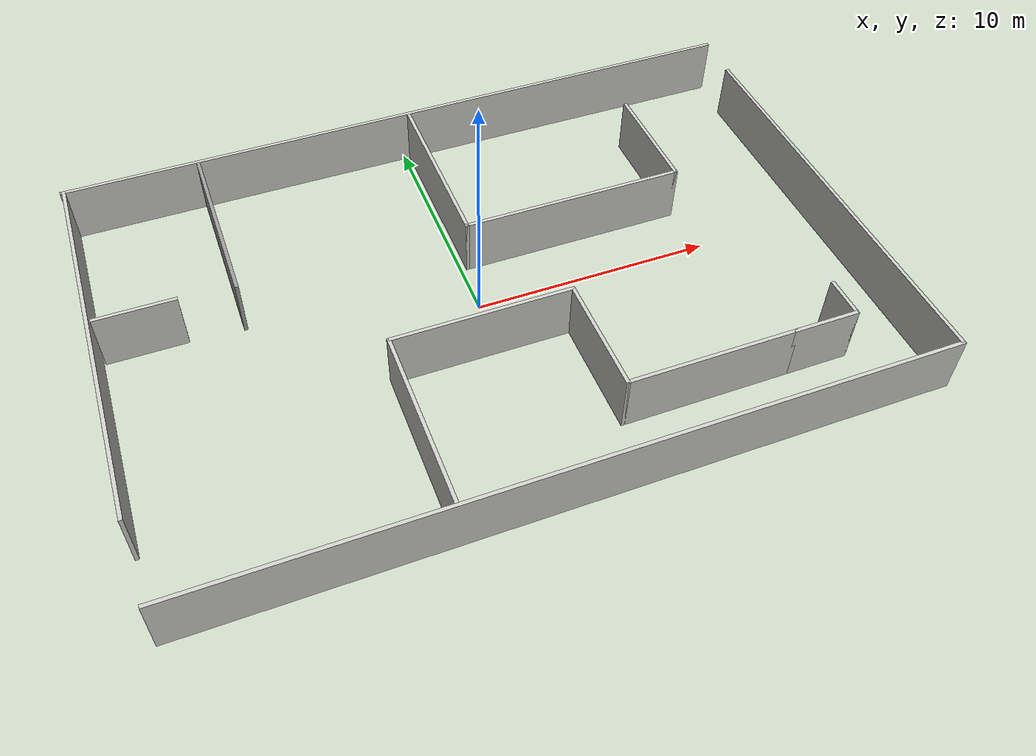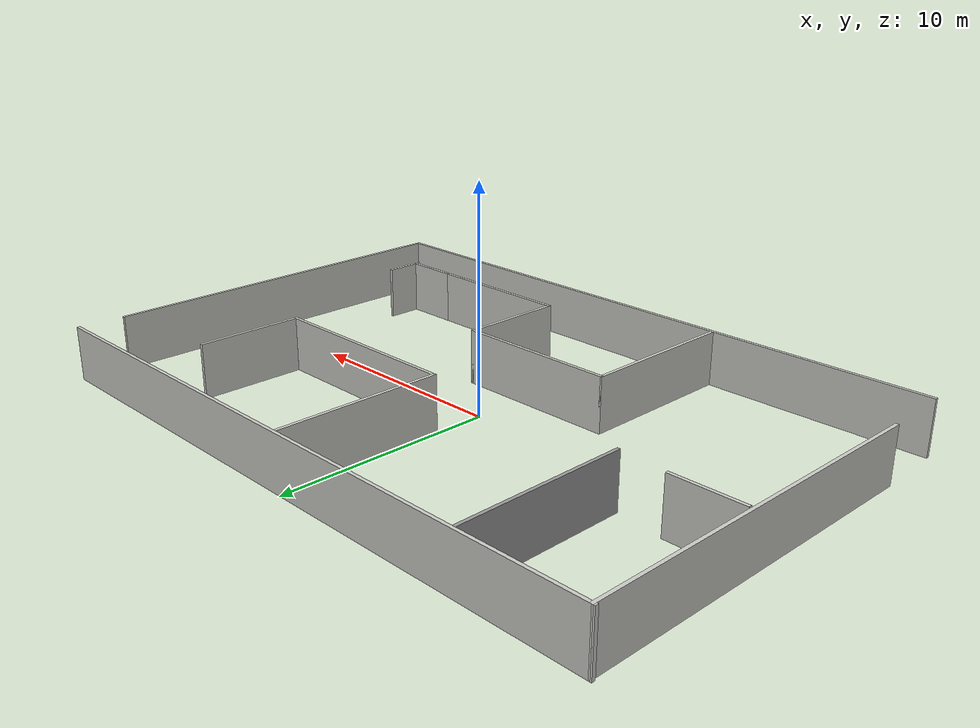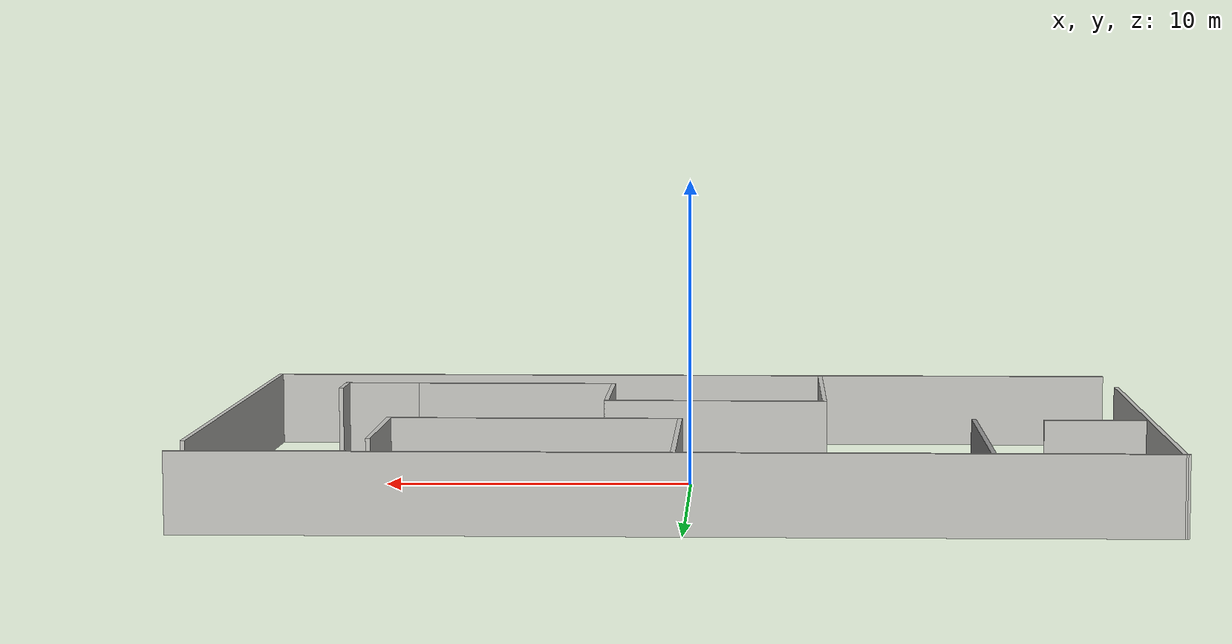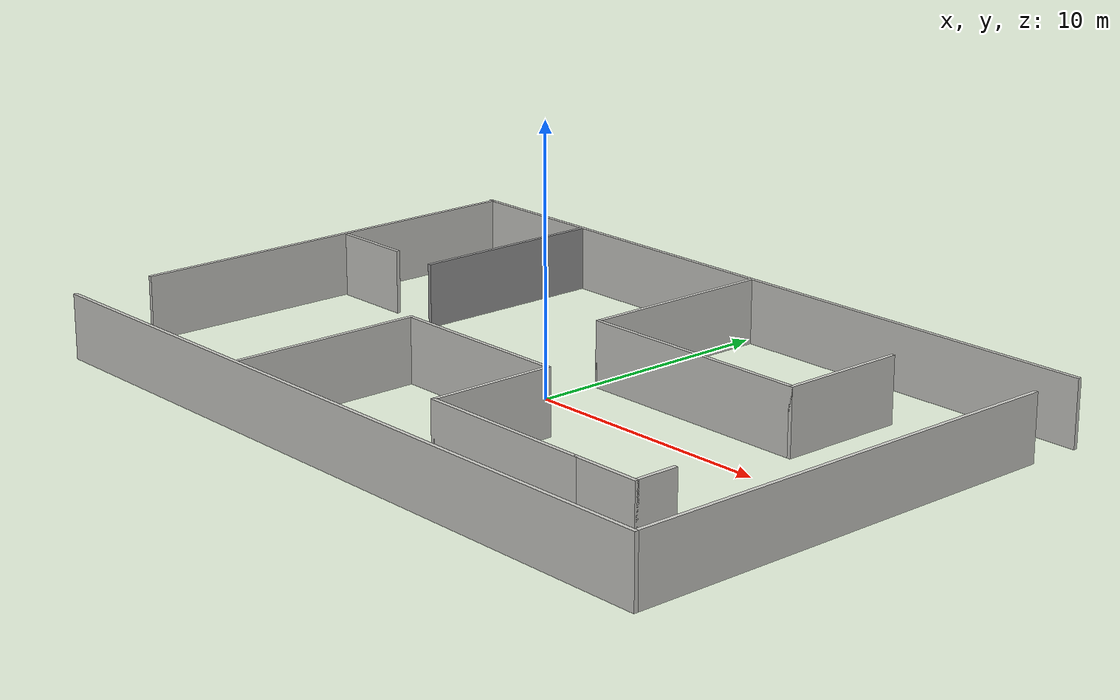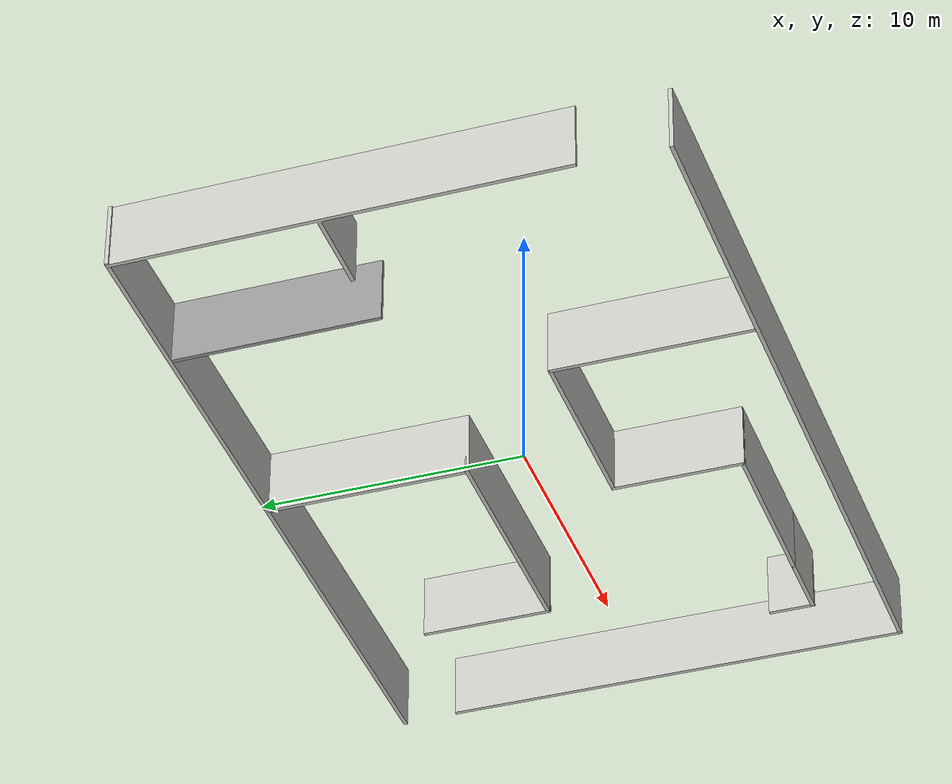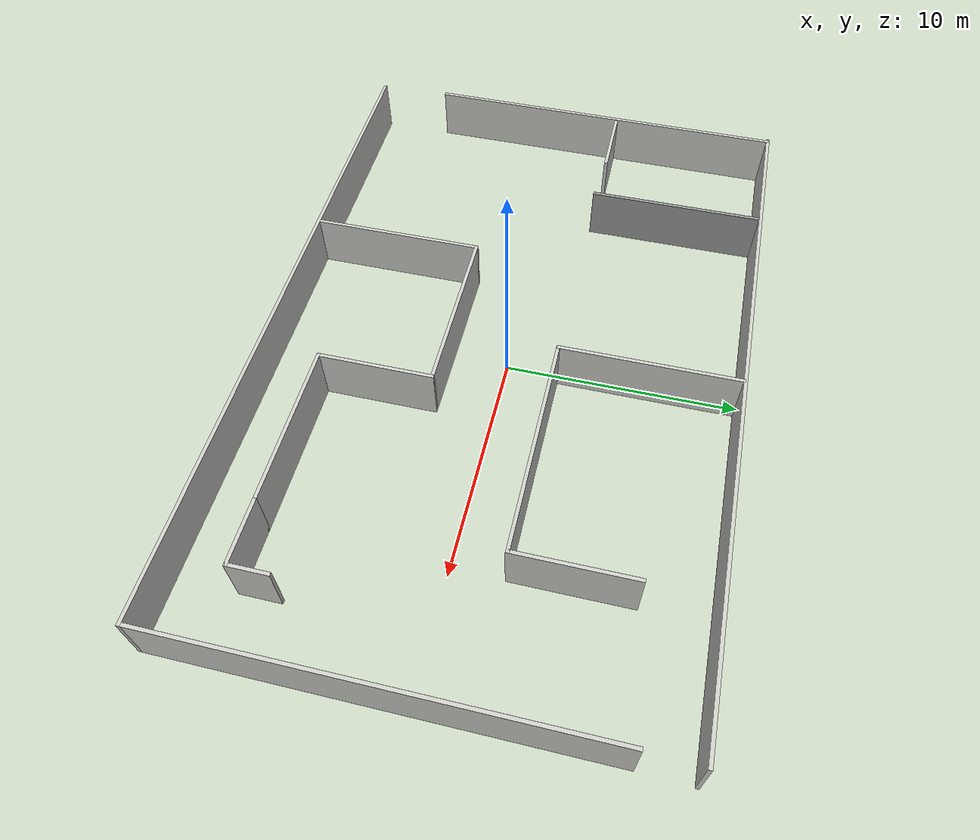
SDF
<?xml version='1.0'?>
<sdf version='1.6'>
  <model name='factory'>
    <pose frame=''>0.234264 -0.009962 0 0 -0 0</pose>
    <link name='Wall_0'>
      <collision name='Wall_0_Collision'>
        <geometry>
          <box>
            <size>29.9191 0.15 2.5</size>
          </box>
        </geometry>
        <pose frame=''>0 0 1.25 0 -0 0</pose>
      </collision>
      <visual name='Wall_0_Visual'>
        <pose frame=''>0 0 1.25 0 -0 0</pose>
        <geometry>
          <box>
            <size>29.9191 0.15 2.5</size>
          </box>
        </geometry>
        <material>
          <script>
            <uri>file://media/materials/scripts/gazebo.material</uri>
            <name>Gazebo/CeilingTiled</name>
          </script>
          <ambient>1 1 1 1</ambient>
        </material>
        <meta>
          <layer>0</layer>
        </meta>
      </visual>
      <pose frame=''>0.043969 -9.92957 0 0 -0 0</pose>
    </link>
    <link name='Wall_11'>
      <collision name='Wall_11_Collision'>
        <geometry>
          <box>
            <size>7.75 0.15 2.5</size>
          </box>
        </geometry>
        <pose frame=''>0 0 1.25 0 -0 0</pose>
      </collision>
      <visual name='Wall_11_Visual'>
        <pose frame=''>0 0 1.25 0 -0 0</pose>
        <geometry>
          <box>
            <size>7.75 0.15 2.5</size>
          </box>
        </geometry>
        <material>
          <script>
            <uri>file://media/materials/scripts/gazebo.material</uri>
            <name>Gazebo/Grey</name>
          </script>
          <ambient>1 1 1 1</ambient>
        </material>
        <meta>
          <layer>0</layer>
        </meta>
      </visual>
      <pose frame=''>-9.34775 5.97949 0 0 -0 1.5708</pose>
    </link>
    <link name='Wall_15'>
      <collision name='Wall_15_Collision'>
        <geometry>
          <box>
            <size>3.25 0.15 2.5</size>
          </box>
        </geometry>
        <pose frame=''>0 0 1.25 0 -0 0</pose>
      </collision>
      <visual name='Wall_15_Visual'>
        <pose frame=''>0 0 1.25 0 -0 0</pose>
        <geometry>
          <box>
            <size>3.25 0.15 2.5</size>
          </box>
        </geometry>
        <material>
          <script>
            <uri>file://media/materials/scripts/gazebo.material</uri>
            <name>Gazebo/CeilingTiled</name>
          </script>
          <ambient>1 1 1 1</ambient>
        </material>
        <meta>
          <layer>0</layer>
        </meta>
      </visual>
      <pose frame=''>-13.1915 2.33437 0 0 -0 3.14159</pose>
    </link>
    <link name='Wall_17'>
      <collision name='Wall_17_Collision'>
        <geometry>
          <box>
            <size>7.75 0.15 2.5</size>
          </box>
        </geometry>
        <pose frame=''>0 0 1.25 0 -0 0</pose>
      </collision>
      <visual name='Wall_17_Visual'>
        <pose frame=''>0 0 1.25 0 -0 0</pose>
        <geometry>
          <box>
            <size>7.75 0.15 2.5</size>
          </box>
        </geometry>
        <material>
          <script>
            <uri>file://media/materials/scripts/gazebo.material</uri>
            <name>Gazebo/CeilingTiled</name>
          </script>
          <ambient>1 1 1 1</ambient>
        </material>
        <meta>
          <layer>0</layer>
        </meta>
      </visual>
      <pose frame=''>0.048773 6.04077 0 0 -0 -1.5708</pose>
    </link>
    <link name='Wall_18'>
      <collision name='Wall_18_Collision'>
        <geometry>
          <box>
            <size>9.5 0.15 2.5</size>
          </box>
        </geometry>
        <pose frame=''>0 0 1.25 0 -0 0</pose>
      </collision>
      <visual name='Wall_18_Visual'>
        <pose frame=''>0 0 1.25 0 -0 0</pose>
        <geometry>
          <box>
            <size>9.5 0.15 2.5</size>
          </box>
        </geometry>
        <material>
          <script>
            <uri>file://media/materials/scripts/gazebo.material</uri>
            <name>Gazebo/CeilingTiled</name>
          </script>
          <ambient>1 1 1 1</ambient>
        </material>
        <meta>
          <layer>0</layer>
        </meta>
      </visual>
      <pose frame=''>4.72377 2.24077 0 0 -0 0</pose>
    </link>
    <link name='Wall_19'>
      <collision name='Wall_19_Collision'>
        <geometry>
          <box>
            <size>5 0.15 2.5</size>
          </box>
        </geometry>
        <pose frame=''>0 0 1.25 0 -0 0</pose>
      </collision>
      <visual name='Wall_19_Visual'>
        <pose frame=''>0 0 1.25 0 -0 0</pose>
        <geometry>
          <box>
            <size>5 0.15 2.5</size>
          </box>
        </geometry>
        <material>
          <script>
            <uri>file://media/materials/scripts/gazebo.material</uri>
            <name>Gazebo/CeilingTiled</name>
          </script>
          <ambient>1 1 1 1</ambient>
        </material>
        <meta>
          <layer>0</layer>
        </meta>
      </visual>
      <pose frame=''>9.39877 4.66577 0 0 -0 1.5708</pose>
    </link>
    <link name='Wall_2'>
      <collision name='Wall_2_Collision'>
        <geometry>
          <box>
            <size>17.75 0.15 2.5</size>
          </box>
        </geometry>
        <pose frame=''>0 0 1.25 0 -0 0</pose>
      </collision>
      <visual name='Wall_2_Visual'>
        <pose frame=''>0 0 1.25 0 -0 0</pose>
        <geometry>
          <box>
            <size>17.75 0.15 2.5</size>
          </box>
        </geometry>
        <material>
          <script>
            <uri>file://media/materials/scripts/gazebo.material</uri>
            <name>Gazebo/CeilingTiled</name>
          </script>
          <ambient>1 1 1 1</ambient>
        </material>
        <meta>
          <layer>0</layer>
        </meta>
      </visual>
      <pose frame=''>14.9283 -1.0482 0 0 -0 1.5708</pose>
    </link>
    <link name='Wall_22'>
      <collision name='Wall_22_Collision'>
        <geometry>
          <box>
            <size>7.5 0.15 2.5</size>
          </box>
        </geometry>
        <pose frame=''>0 0 1.25 0 -0 0</pose>
      </collision>
      <visual name='Wall_22_Visual'>
        <pose frame=''>0 0 1.25 0 -0 0</pose>
        <geometry>
          <box>
            <size>7.5 0.15 2.5</size>
          </box>
        </geometry>
        <material>
          <script>
            <uri>file://media/materials/scripts/gazebo.material</uri>
            <name>Gazebo/CeilingTiled</name>
          </script>
          <ambient>1 1 1 1</ambient>
        </material>
        <meta>
          <layer>0</layer>
        </meta>
      </visual>
      <pose frame=''>-4.68887 -6.11162 0 0 -0 1.5708</pose>
    </link>
    <link name='Wall_23'>
      <collision name='Wall_23_Collision'>
        <geometry>
          <box>
            <size>7.5 0.15 2.5</size>
          </box>
        </geometry>
        <pose frame=''>0 0 1.25 0 -0 0</pose>
      </collision>
      <visual name='Wall_23_Visual'>
        <pose frame=''>0 0 1.25 0 -0 0</pose>
        <geometry>
          <box>
            <size>7.5 0.15 2.5</size>
          </box>
        </geometry>
        <material>
          <script>
            <uri>file://media/materials/scripts/gazebo.material</uri>
            <name>Gazebo/CeilingTiled</name>
          </script>
          <ambient>1 1 1 1</ambient>
        </material>
        <meta>
          <layer>0</layer>
        </meta>
      </visual>
      <pose frame=''>-1.01387 -2.43662 0 0 -0 0</pose>
    </link>
    <link name='Wall_24'>
      <collision name='Wall_24_Collision'>
        <geometry>
          <box>
            <size>5 0.15 2.5</size>
          </box>
        </geometry>
        <pose frame=''>0 0 1.25 0 -0 0</pose>
      </collision>
      <visual name='Wall_24_Visual'>
        <pose frame=''>0 0 1.25 0 -0 0</pose>
        <geometry>
          <box>
            <size>5 0.15 2.5</size>
          </box>
        </geometry>
        <material>
          <script>
            <uri>file://media/materials/scripts/gazebo.material</uri>
            <name>Gazebo/CeilingTiled</name>
          </script>
          <ambient>1 1 1 1</ambient>
        </material>
        <meta>
          <layer>0</layer>
        </meta>
      </visual>
      <pose frame=''>2.66113 -4.86162 0 0 -0 -1.5708</pose>
    </link>
    <link name='Wall_25'>
      <collision name='Wall_25_Collision'>
        <geometry>
          <box>
            <size>7 0.15 2.5</size>
          </box>
        </geometry>
        <pose frame=''>0 0 1.25 0 -0 0</pose>
      </collision>
      <visual name='Wall_25_Visual'>
        <pose frame=''>0 0 1.25 0 -0 0</pose>
        <geometry>
          <box>
            <size>7 0.15 2.5</size>
          </box>
        </geometry>
        <material>
          <script>
            <uri>file://media/materials/scripts/gazebo.material</uri>
            <name>Gazebo/CeilingTiled</name>
          </script>
          <ambient>1 1 1 1</ambient>
        </material>
        <meta>
          <layer>0</layer>
        </meta>
      </visual>
      <pose frame=''>6.08613 -7.28662 0 0 -0 0</pose>
    </link>
    <link name='Wall_26'>
      <collision name='Wall_26_Collision'>
        <geometry>
          <box>
            <size>2.75 0.15 2.5</size>
          </box>
        </geometry>
        <pose frame=''>0 0 1.25 0 -0 0</pose>
      </collision>
      <visual name='Wall_26_Visual'>
        <pose frame=''>0 0 1.25 0 -0 0</pose>
        <geometry>
          <box>
            <size>2.75 0.15 2.5</size>
          </box>
        </geometry>
        <material>
          <script>
            <uri>file://media/materials/scripts/gazebo.material</uri>
            <name>Gazebo/CeilingTiled</name>
          </script>
          <ambient>1 1 1 1</ambient>
        </material>
        <meta>
          <layer>0</layer>
        </meta>
      </visual>
      <pose frame=''>10.8111 -7.28662 0 0 -0 0</pose>
    </link>
    <link name='Wall_27'>
      <collision name='Wall_27_Collision'>
        <geometry>
          <box>
            <size>1.75 0.15 2.5</size>
          </box>
        </geometry>
        <pose frame=''>0 0 1.25 0 -0 0</pose>
      </collision>
      <visual name='Wall_27_Visual'>
        <pose frame=''>0 0 1.25 0 -0 0</pose>
        <geometry>
          <box>
            <size>1.75 0.15 2.5</size>
          </box>
        </geometry>
        <material>
          <script>
            <uri>file://media/materials/scripts/gazebo.material</uri>
            <name>Gazebo/CeilingTiled</name>
          </script>
          <ambient>1 1 1 1</ambient>
        </material>
        <meta>
          <layer>0</layer>
        </meta>
      </visual>
      <pose frame=''>12.1111 -6.48662 0 0 -0 1.5708</pose>
    </link>
    <link name='Wall_4'>
      <collision name='Wall_4_Collision'>
        <geometry>
          <box>
            <size>30.1415 0.15 2.5</size>
          </box>
        </geometry>
        <pose frame=''>0 0 1.25 0 -0 0</pose>
      </collision>
      <visual name='Wall_4_Visual'>
        <pose frame=''>0 0 1.25 0 -0 0</pose>
        <geometry>
          <box>
            <size>30.1415 0.15 2.5</size>
          </box>
        </geometry>
        <material>
          <script>
            <uri>file://media/materials/scripts/gazebo.material</uri>
            <name>Gazebo/CeilingTiled</name>
          </script>
          <ambient>0.533333 0.541176 0.521569 1</ambient>
        </material>
        <meta>
          <layer>0</layer>
        </meta>
      </visual>
      <pose frame=''>0.000146 9.92423 0 0 -0 -3.14124</pose>
    </link>
    <link name='Wall_5'>
      <collision name='Wall_5_Collision'>
        <geometry>
          <box>
            <size>16.6876 0.15 2.5</size>
          </box>
        </geometry>
        <pose frame=''>0 0 1.25 0 -0 0</pose>
      </collision>
      <visual name='Wall_5_Visual'>
        <pose frame=''>0 0 1.25 0 -0 0</pose>
        <geometry>
          <box>
            <size>16.6876 0.15 2.5</size>
          </box>
        </geometry>
        <material>
          <script>
            <uri>file://media/materials/scripts/gazebo.material</uri>
            <name>Gazebo/CeilingTiled</name>
          </script>
          <ambient>1 1 1 1</ambient>
        </material>
        <meta>
          <layer>0</layer>
        </meta>
      </visual>
      <pose frame=''>-14.9602 1.6502 0 0 -0 -1.57508</pose>
    </link>
    <static>1</static>
  </model>
</sdf>
